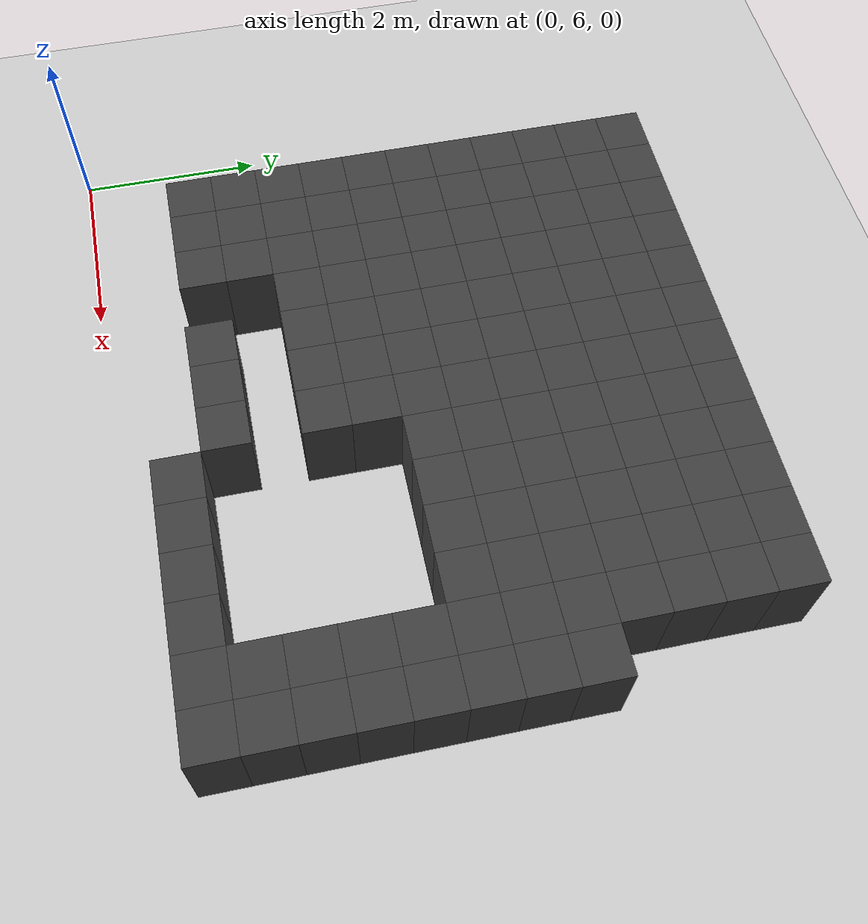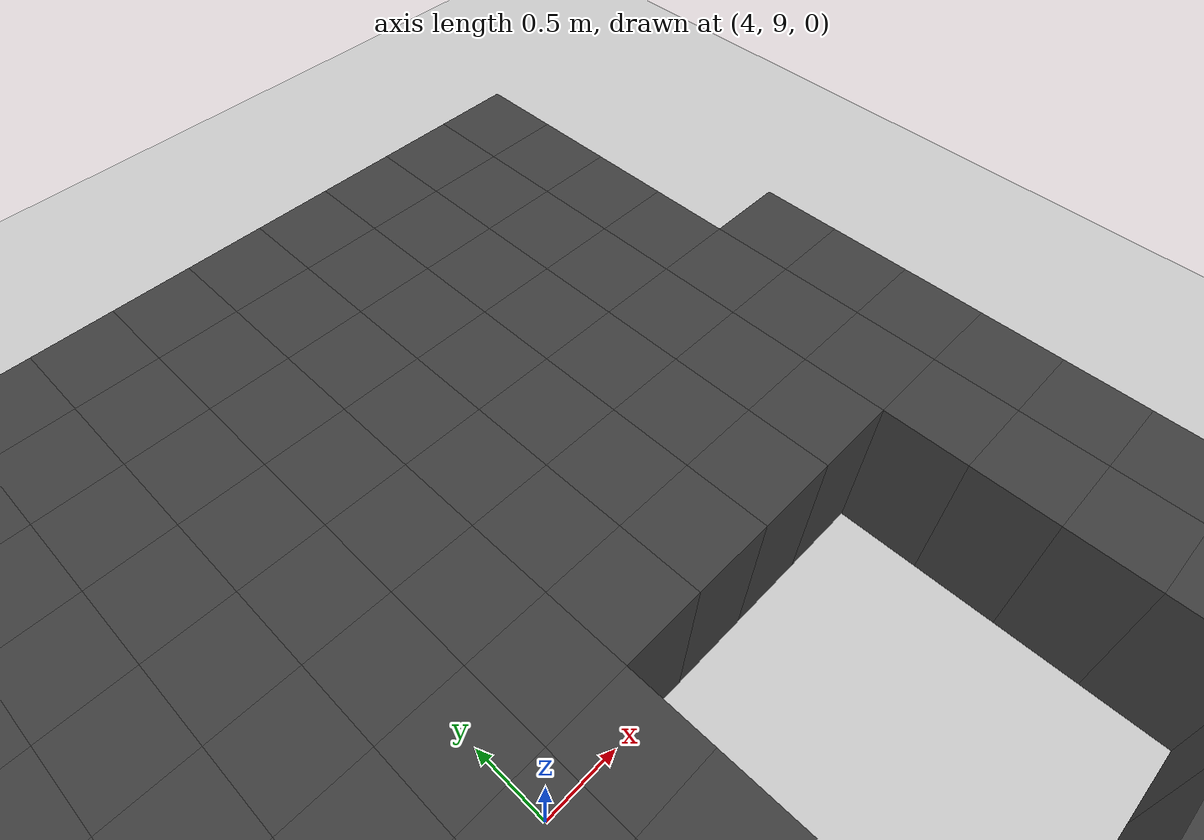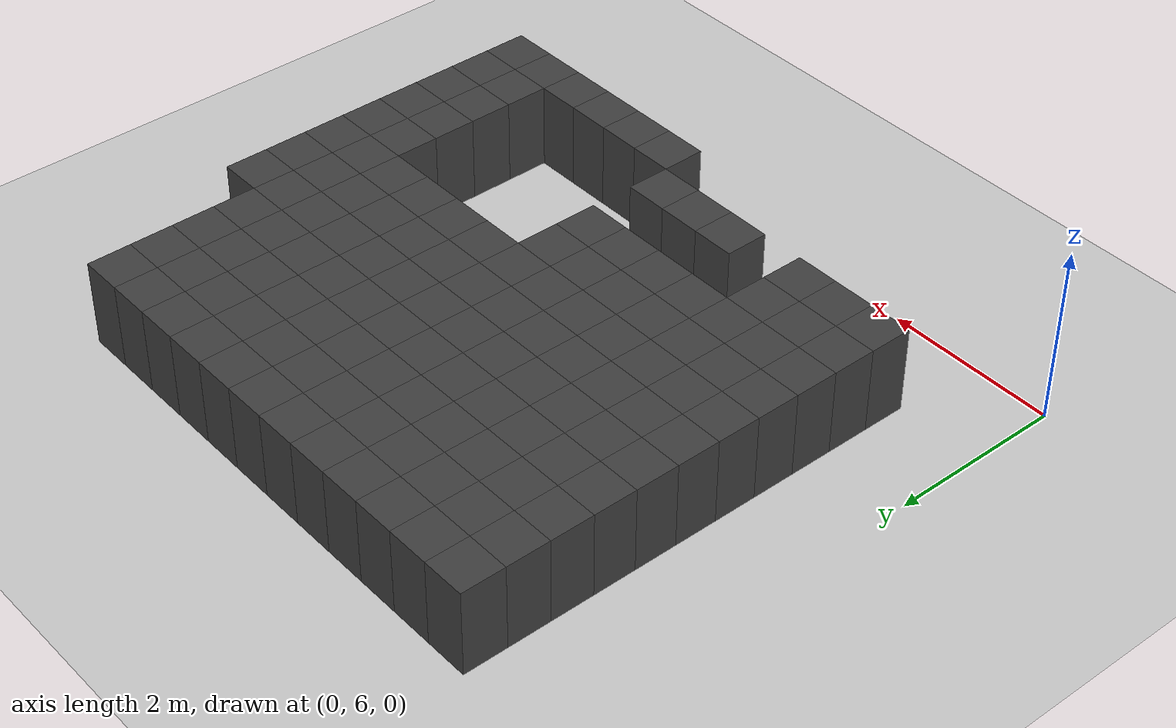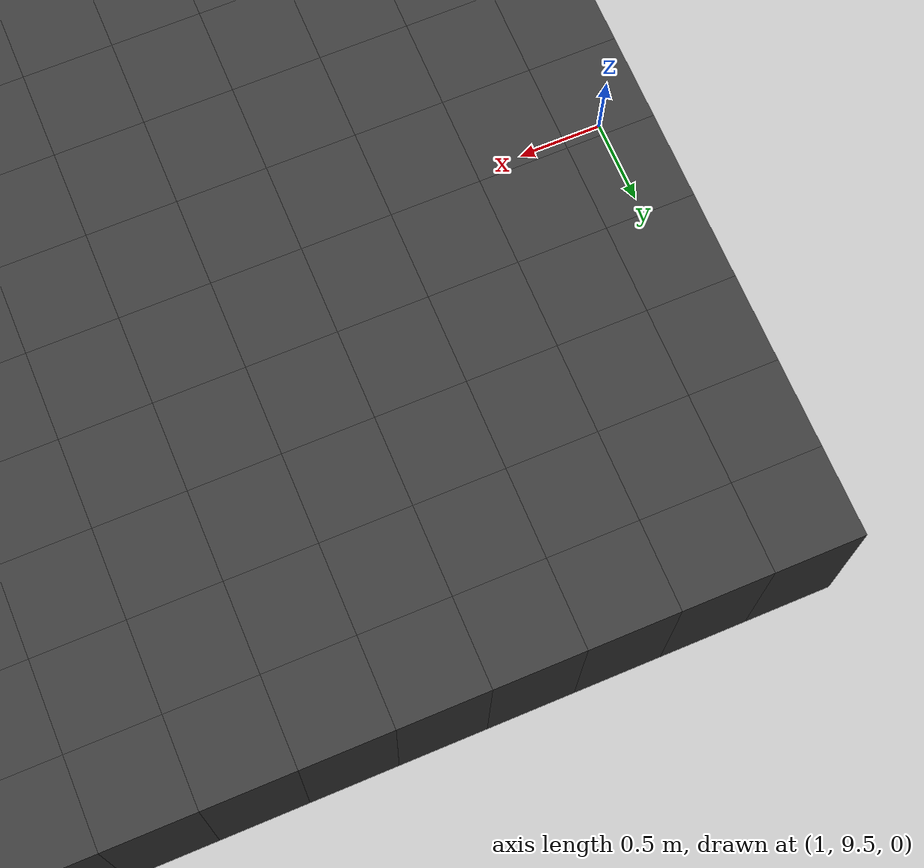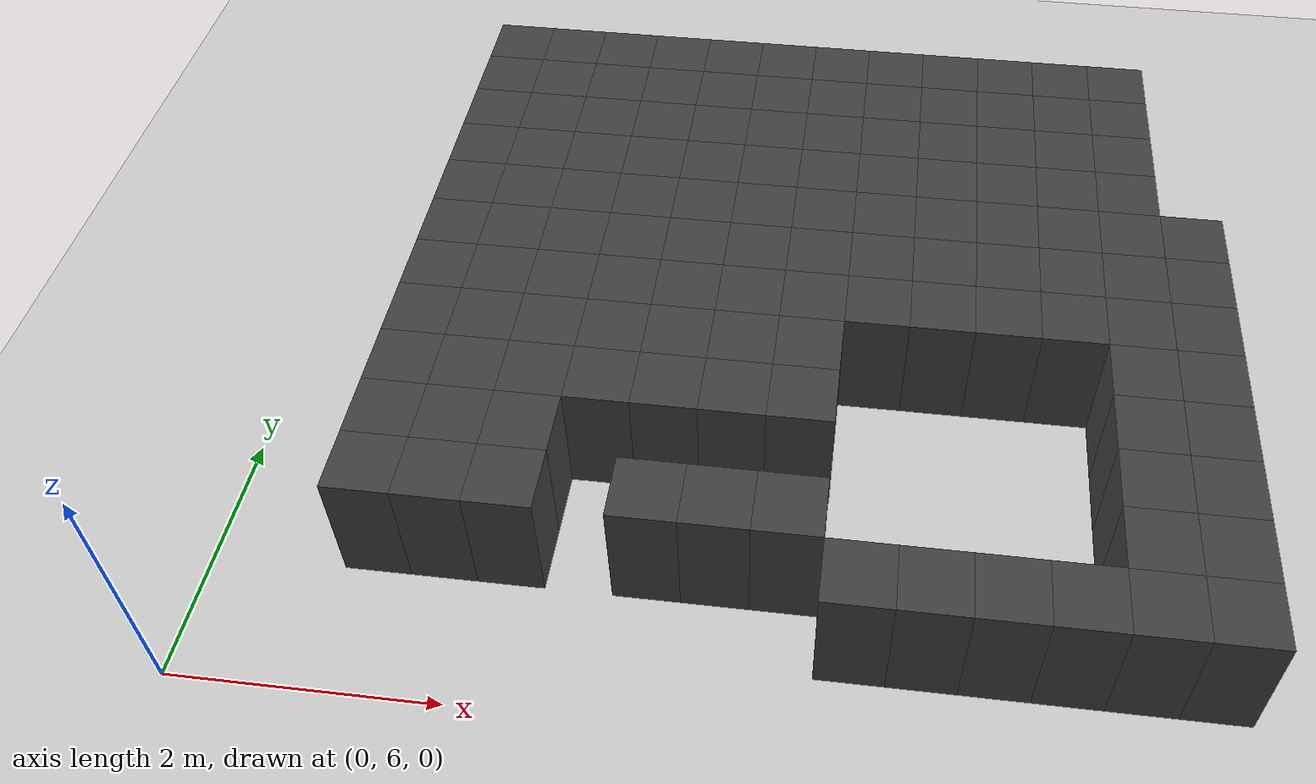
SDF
<sdf version="1.7">
 <world name="map_12818">
  <model name="ground_plane">
   <static>true</static>
   <link name="link">
    <collision name="collision">
     <geometry><plane><normal>0 0 1</normal><size>200 200</size></plane></geometry>
    </collision>
    <visual name="visual">
     <geometry><plane><normal>0 0 1</normal><size>200 200</size></plane></geometry>
     <material><ambient>0.8 0.8 0.8 1</ambient><diffuse>0.8 0.8 0.8 1</diffuse></material>
    </visual>
   </link>
  </model>
  <model name="maze_environment">
   <static>true</static>
   <link name="wall_27">
    <pose>1.250 12.250 0.500 0 0 0</pose>
    <collision name="col"><geometry><box><size>0.5 0.5 1.0</size></box></geometry></collision>
    <visual name="vis">
     <geometry><box><size>0.5 0.5 1.0</size></box></geometry>
     <material><ambient>0.15 0.15 0.15 1</ambient><diffuse>0.25 0.25 0.25 1</diffuse></material>
    </visual>
   </link>
   <link name="wall_28">
    <pose>1.750 12.250 0.500 0 0 0</pose>
    <collision name="col"><geometry><box><size>0.5 0.5 1.0</size></box></geometry></collision>
    <visual name="vis">
     <geometry><box><size>0.5 0.5 1.0</size></box></geometry>
     <material><ambient>0.15 0.15 0.15 1</ambient><diffuse>0.25 0.25 0.25 1</diffuse></material>
    </visual>
   </link>
   <link name="wall_29">
    <pose>2.250 12.250 0.500 0 0 0</pose>
    <collision name="col"><geometry><box><size>0.5 0.5 1.0</size></box></geometry></collision>
    <visual name="vis">
     <geometry><box><size>0.5 0.5 1.0</size></box></geometry>
     <material><ambient>0.15 0.15 0.15 1</ambient><diffuse>0.25 0.25 0.25 1</diffuse></material>
    </visual>
   </link>
   <link name="wall_30">
    <pose>2.750 12.250 0.500 0 0 0</pose>
    <collision name="col"><geometry><box><size>0.5 0.5 1.0</size></box></geometry></collision>
    <visual name="vis">
     <geometry><box><size>0.5 0.5 1.0</size></box></geometry>
     <material><ambient>0.15 0.15 0.15 1</ambient><diffuse>0.25 0.25 0.25 1</diffuse></material>
    </visual>
   </link>
   <link name="wall_31">
    <pose>3.250 12.250 0.500 0 0 0</pose>
    <collision name="col"><geometry><box><size>0.5 0.5 1.0</size></box></geometry></collision>
    <visual name="vis">
     <geometry><box><size>0.5 0.5 1.0</size></box></geometry>
     <material><ambient>0.15 0.15 0.15 1</ambient><diffuse>0.25 0.25 0.25 1</diffuse></material>
    </visual>
   </link>
   <link name="wall_32">
    <pose>3.750 12.250 0.500 0 0 0</pose>
    <collision name="col"><geometry><box><size>0.5 0.5 1.0</size></box></geometry></collision>
    <visual name="vis">
     <geometry><box><size>0.5 0.5 1.0</size></box></geometry>
     <material><ambient>0.15 0.15 0.15 1</ambient><diffuse>0.25 0.25 0.25 1</diffuse></material>
    </visual>
   </link>
   <link name="wall_33">
    <pose>4.250 12.250 0.500 0 0 0</pose>
    <collision name="col"><geometry><box><size>0.5 0.5 1.0</size></box></geometry></collision>
    <visual name="vis">
     <geometry><box><size>0.5 0.5 1.0</size></box></geometry>
     <material><ambient>0.15 0.15 0.15 1</ambient><diffuse>0.25 0.25 0.25 1</diffuse></material>
    </visual>
   </link>
   <link name="wall_34">
    <pose>4.750 12.250 0.500 0 0 0</pose>
    <collision name="col"><geometry><box><size>0.5 0.5 1.0</size></box></geometry></collision>
    <visual name="vis">
     <geometry><box><size>0.5 0.5 1.0</size></box></geometry>
     <material><ambient>0.15 0.15 0.15 1</ambient><diffuse>0.25 0.25 0.25 1</diffuse></material>
    </visual>
   </link>
   <link name="wall_35">
    <pose>5.250 12.250 0.500 0 0 0</pose>
    <collision name="col"><geometry><box><size>0.5 0.5 1.0</size></box></geometry></collision>
    <visual name="vis">
     <geometry><box><size>0.5 0.5 1.0</size></box></geometry>
     <material><ambient>0.15 0.15 0.15 1</ambient><diffuse>0.25 0.25 0.25 1</diffuse></material>
    </visual>
   </link>
   <link name="wall_36">
    <pose>5.750 12.250 0.500 0 0 0</pose>
    <collision name="col"><geometry><box><size>0.5 0.5 1.0</size></box></geometry></collision>
    <visual name="vis">
     <geometry><box><size>0.5 0.5 1.0</size></box></geometry>
     <material><ambient>0.15 0.15 0.15 1</ambient><diffuse>0.25 0.25 0.25 1</diffuse></material>
    </visual>
   </link>
   <link name="wall_37">
    <pose>6.250 12.250 0.500 0 0 0</pose>
    <collision name="col"><geometry><box><size>0.5 0.5 1.0</size></box></geometry></collision>
    <visual name="vis">
     <geometry><box><size>0.5 0.5 1.0</size></box></geometry>
     <material><ambient>0.15 0.15 0.15 1</ambient><diffuse>0.25 0.25 0.25 1</diffuse></material>
    </visual>
   </link>
   <link name="wall_38">
    <pose>6.750 12.250 0.500 0 0 0</pose>
    <collision name="col"><geometry><box><size>0.5 0.5 1.0</size></box></geometry></collision>
    <visual name="vis">
     <geometry><box><size>0.5 0.5 1.0</size></box></geometry>
     <material><ambient>0.15 0.15 0.15 1</ambient><diffuse>0.25 0.25 0.25 1</diffuse></material>
    </visual>
   </link>
   <link name="wall_74">
    <pose>1.250 11.750 0.500 0 0 0</pose>
    <collision name="col"><geometry><box><size>0.5 0.5 1.0</size></box></geometry></collision>
    <visual name="vis">
     <geometry><box><size>0.5 0.5 1.0</size></box></geometry>
     <material><ambient>0.15 0.15 0.15 1</ambient><diffuse>0.25 0.25 0.25 1</diffuse></material>
    </visual>
   </link>
   <link name="wall_75">
    <pose>1.750 11.750 0.500 0 0 0</pose>
    <collision name="col"><geometry><box><size>0.5 0.5 1.0</size></box></geometry></collision>
    <visual name="vis">
     <geometry><box><size>0.5 0.5 1.0</size></box></geometry>
     <material><ambient>0.15 0.15 0.15 1</ambient><diffuse>0.25 0.25 0.25 1</diffuse></material>
    </visual>
   </link>
   <link name="wall_76">
    <pose>2.250 11.750 0.500 0 0 0</pose>
    <collision name="col"><geometry><box><size>0.5 0.5 1.0</size></box></geometry></collision>
    <visual name="vis">
     <geometry><box><size>0.5 0.5 1.0</size></box></geometry>
     <material><ambient>0.15 0.15 0.15 1</ambient><diffuse>0.25 0.25 0.25 1</diffuse></material>
    </visual>
   </link>
   <link name="wall_77">
    <pose>2.750 11.750 0.500 0 0 0</pose>
    <collision name="col"><geometry><box><size>0.5 0.5 1.0</size></box></geometry></collision>
    <visual name="vis">
     <geometry><box><size>0.5 0.5 1.0</size></box></geometry>
     <material><ambient>0.15 0.15 0.15 1</ambient><diffuse>0.25 0.25 0.25 1</diffuse></material>
    </visual>
   </link>
   <link name="wall_78">
    <pose>3.250 11.750 0.500 0 0 0</pose>
    <collision name="col"><geometry><box><size>0.5 0.5 1.0</size></box></geometry></collision>
    <visual name="vis">
     <geometry><box><size>0.5 0.5 1.0</size></box></geometry>
     <material><ambient>0.15 0.15 0.15 1</ambient><diffuse>0.25 0.25 0.25 1</diffuse></material>
    </visual>
   </link>
   <link name="wall_79">
    <pose>3.750 11.750 0.500 0 0 0</pose>
    <collision name="col"><geometry><box><size>0.5 0.5 1.0</size></box></geometry></collision>
    <visual name="vis">
     <geometry><box><size>0.5 0.5 1.0</size></box></geometry>
     <material><ambient>0.15 0.15 0.15 1</ambient><diffuse>0.25 0.25 0.25 1</diffuse></material>
    </visual>
   </link>
   <link name="wall_80">
    <pose>4.250 11.750 0.500 0 0 0</pose>
    <collision name="col"><geometry><box><size>0.5 0.5 1.0</size></box></geometry></collision>
    <visual name="vis">
     <geometry><box><size>0.5 0.5 1.0</size></box></geometry>
     <material><ambient>0.15 0.15 0.15 1</ambient><diffuse>0.25 0.25 0.25 1</diffuse></material>
    </visual>
   </link>
   <link name="wall_81">
    <pose>4.750 11.750 0.500 0 0 0</pose>
    <collision name="col"><geometry><box><size>0.5 0.5 1.0</size></box></geometry></collision>
    <visual name="vis">
     <geometry><box><size>0.5 0.5 1.0</size></box></geometry>
     <material><ambient>0.15 0.15 0.15 1</ambient><diffuse>0.25 0.25 0.25 1</diffuse></material>
    </visual>
   </link>
   <link name="wall_82">
    <pose>5.250 11.750 0.500 0 0 0</pose>
    <collision name="col"><geometry><box><size>0.5 0.5 1.0</size></box></geometry></collision>
    <visual name="vis">
     <geometry><box><size>0.5 0.5 1.0</size></box></geometry>
     <material><ambient>0.15 0.15 0.15 1</ambient><diffuse>0.25 0.25 0.25 1</diffuse></material>
    </visual>
   </link>
   <link name="wall_83">
    <pose>5.750 11.750 0.500 0 0 0</pose>
    <collision name="col"><geometry><box><size>0.5 0.5 1.0</size></box></geometry></collision>
    <visual name="vis">
     <geometry><box><size>0.5 0.5 1.0</size></box></geometry>
     <material><ambient>0.15 0.15 0.15 1</ambient><diffuse>0.25 0.25 0.25 1</diffuse></material>
    </visual>
   </link>
   <link name="wall_84">
    <pose>6.250 11.750 0.500 0 0 0</pose>
    <collision name="col"><geometry><box><size>0.5 0.5 1.0</size></box></geometry></collision>
    <visual name="vis">
     <geometry><box><size>0.5 0.5 1.0</size></box></geometry>
     <material><ambient>0.15 0.15 0.15 1</ambient><diffuse>0.25 0.25 0.25 1</diffuse></material>
    </visual>
   </link>
   <link name="wall_85">
    <pose>6.750 11.750 0.500 0 0 0</pose>
    <collision name="col"><geometry><box><size>0.5 0.5 1.0</size></box></geometry></collision>
    <visual name="vis">
     <geometry><box><size>0.5 0.5 1.0</size></box></geometry>
     <material><ambient>0.15 0.15 0.15 1</ambient><diffuse>0.25 0.25 0.25 1</diffuse></material>
    </visual>
   </link>
   <link name="wall_121">
    <pose>1.250 11.250 0.500 0 0 0</pose>
    <collision name="col"><geometry><box><size>0.5 0.5 1.0</size></box></geometry></collision>
    <visual name="vis">
     <geometry><box><size>0.5 0.5 1.0</size></box></geometry>
     <material><ambient>0.15 0.15 0.15 1</ambient><diffuse>0.25 0.25 0.25 1</diffuse></material>
    </visual>
   </link>
   <link name="wall_122">
    <pose>1.750 11.250 0.500 0 0 0</pose>
    <collision name="col"><geometry><box><size>0.5 0.5 1.0</size></box></geometry></collision>
    <visual name="vis">
     <geometry><box><size>0.5 0.5 1.0</size></box></geometry>
     <material><ambient>0.15 0.15 0.15 1</ambient><diffuse>0.25 0.25 0.25 1</diffuse></material>
    </visual>
   </link>
   <link name="wall_123">
    <pose>2.250 11.250 0.500 0 0 0</pose>
    <collision name="col"><geometry><box><size>0.5 0.5 1.0</size></box></geometry></collision>
    <visual name="vis">
     <geometry><box><size>0.5 0.5 1.0</size></box></geometry>
     <material><ambient>0.15 0.15 0.15 1</ambient><diffuse>0.25 0.25 0.25 1</diffuse></material>
    </visual>
   </link>
   <link name="wall_124">
    <pose>2.750 11.250 0.500 0 0 0</pose>
    <collision name="col"><geometry><box><size>0.5 0.5 1.0</size></box></geometry></collision>
    <visual name="vis">
     <geometry><box><size>0.5 0.5 1.0</size></box></geometry>
     <material><ambient>0.15 0.15 0.15 1</ambient><diffuse>0.25 0.25 0.25 1</diffuse></material>
    </visual>
   </link>
   <link name="wall_125">
    <pose>3.250 11.250 0.500 0 0 0</pose>
    <collision name="col"><geometry><box><size>0.5 0.5 1.0</size></box></geometry></collision>
    <visual name="vis">
     <geometry><box><size>0.5 0.5 1.0</size></box></geometry>
     <material><ambient>0.15 0.15 0.15 1</ambient><diffuse>0.25 0.25 0.25 1</diffuse></material>
    </visual>
   </link>
   <link name="wall_126">
    <pose>3.750 11.250 0.500 0 0 0</pose>
    <collision name="col"><geometry><box><size>0.5 0.5 1.0</size></box></geometry></collision>
    <visual name="vis">
     <geometry><box><size>0.5 0.5 1.0</size></box></geometry>
     <material><ambient>0.15 0.15 0.15 1</ambient><diffuse>0.25 0.25 0.25 1</diffuse></material>
    </visual>
   </link>
   <link name="wall_127">
    <pose>4.250 11.250 0.500 0 0 0</pose>
    <collision name="col"><geometry><box><size>0.5 0.5 1.0</size></box></geometry></collision>
    <visual name="vis">
     <geometry><box><size>0.5 0.5 1.0</size></box></geometry>
     <material><ambient>0.15 0.15 0.15 1</ambient><diffuse>0.25 0.25 0.25 1</diffuse></material>
    </visual>
   </link>
   <link name="wall_128">
    <pose>4.750 11.250 0.500 0 0 0</pose>
    <collision name="col"><geometry><box><size>0.5 0.5 1.0</size></box></geometry></collision>
    <visual name="vis">
     <geometry><box><size>0.5 0.5 1.0</size></box></geometry>
     <material><ambient>0.15 0.15 0.15 1</ambient><diffuse>0.25 0.25 0.25 1</diffuse></material>
    </visual>
   </link>
   <link name="wall_129">
    <pose>5.250 11.250 0.500 0 0 0</pose>
    <collision name="col"><geometry><box><size>0.5 0.5 1.0</size></box></geometry></collision>
    <visual name="vis">
     <geometry><box><size>0.5 0.5 1.0</size></box></geometry>
     <material><ambient>0.15 0.15 0.15 1</ambient><diffuse>0.25 0.25 0.25 1</diffuse></material>
    </visual>
   </link>
   <link name="wall_130">
    <pose>5.750 11.250 0.500 0 0 0</pose>
    <collision name="col"><geometry><box><size>0.5 0.5 1.0</size></box></geometry></collision>
    <visual name="vis">
     <geometry><box><size>0.5 0.5 1.0</size></box></geometry>
     <material><ambient>0.15 0.15 0.15 1</ambient><diffuse>0.25 0.25 0.25 1</diffuse></material>
    </visual>
   </link>
   <link name="wall_131">
    <pose>6.250 11.250 0.500 0 0 0</pose>
    <collision name="col"><geometry><box><size>0.5 0.5 1.0</size></box></geometry></collision>
    <visual name="vis">
     <geometry><box><size>0.5 0.5 1.0</size></box></geometry>
     <material><ambient>0.15 0.15 0.15 1</ambient><diffuse>0.25 0.25 0.25 1</diffuse></material>
    </visual>
   </link>
   <link name="wall_132">
    <pose>6.750 11.250 0.500 0 0 0</pose>
    <collision name="col"><geometry><box><size>0.5 0.5 1.0</size></box></geometry></collision>
    <visual name="vis">
     <geometry><box><size>0.5 0.5 1.0</size></box></geometry>
     <material><ambient>0.15 0.15 0.15 1</ambient><diffuse>0.25 0.25 0.25 1</diffuse></material>
    </visual>
   </link>
   <link name="wall_168">
    <pose>1.250 10.750 0.500 0 0 0</pose>
    <collision name="col"><geometry><box><size>0.5 0.5 1.0</size></box></geometry></collision>
    <visual name="vis">
     <geometry><box><size>0.5 0.5 1.0</size></box></geometry>
     <material><ambient>0.15 0.15 0.15 1</ambient><diffuse>0.25 0.25 0.25 1</diffuse></material>
    </visual>
   </link>
   <link name="wall_169">
    <pose>1.750 10.750 0.500 0 0 0</pose>
    <collision name="col"><geometry><box><size>0.5 0.5 1.0</size></box></geometry></collision>
    <visual name="vis">
     <geometry><box><size>0.5 0.5 1.0</size></box></geometry>
     <material><ambient>0.15 0.15 0.15 1</ambient><diffuse>0.25 0.25 0.25 1</diffuse></material>
    </visual>
   </link>
   <link name="wall_170">
    <pose>2.250 10.750 0.500 0 0 0</pose>
    <collision name="col"><geometry><box><size>0.5 0.5 1.0</size></box></geometry></collision>
    <visual name="vis">
     <geometry><box><size>0.5 0.5 1.0</size></box></geometry>
     <material><ambient>0.15 0.15 0.15 1</ambient><diffuse>0.25 0.25 0.25 1</diffuse></material>
    </visual>
   </link>
   <link name="wall_171">
    <pose>2.750 10.750 0.500 0 0 0</pose>
    <collision name="col"><geometry><box><size>0.5 0.5 1.0</size></box></geometry></collision>
    <visual name="vis">
     <geometry><box><size>0.5 0.5 1.0</size></box></geometry>
     <material><ambient>0.15 0.15 0.15 1</ambient><diffuse>0.25 0.25 0.25 1</diffuse></material>
    </visual>
   </link>
   <link name="wall_172">
    <pose>3.250 10.750 0.500 0 0 0</pose>
    <collision name="col"><geometry><box><size>0.5 0.5 1.0</size></box></geometry></collision>
    <visual name="vis">
     <geometry><box><size>0.5 0.5 1.0</size></box></geometry>
     <material><ambient>0.15 0.15 0.15 1</ambient><diffuse>0.25 0.25 0.25 1</diffuse></material>
    </visual>
   </link>
   <link name="wall_173">
    <pose>3.750 10.750 0.500 0 0 0</pose>
    <collision name="col"><geometry><box><size>0.5 0.5 1.0</size></box></geometry></collision>
    <visual name="vis">
     <geometry><box><size>0.5 0.5 1.0</size></box></geometry>
     <material><ambient>0.15 0.15 0.15 1</ambient><diffuse>0.25 0.25 0.25 1</diffuse></material>
    </visual>
   </link>
   <link name="wall_174">
    <pose>4.250 10.750 0.500 0 0 0</pose>
    <collision name="col"><geometry><box><size>0.5 0.5 1.0</size></box></geometry></collision>
    <visual name="vis">
     <geometry><box><size>0.5 0.5 1.0</size></box></geometry>
     <material><ambient>0.15 0.15 0.15 1</ambient><diffuse>0.25 0.25 0.25 1</diffuse></material>
    </visual>
   </link>
   <link name="wall_175">
    <pose>4.750 10.750 0.500 0 0 0</pose>
    <collision name="col"><geometry><box><size>0.5 0.5 1.0</size></box></geometry></collision>
    <visual name="vis">
     <geometry><box><size>0.5 0.5 1.0</size></box></geometry>
     <material><ambient>0.15 0.15 0.15 1</ambient><diffuse>0.25 0.25 0.25 1</diffuse></material>
    </visual>
   </link>
   <link name="wall_176">
    <pose>5.250 10.750 0.500 0 0 0</pose>
    <collision name="col"><geometry><box><size>0.5 0.5 1.0</size></box></geometry></collision>
    <visual name="vis">
     <geometry><box><size>0.5 0.5 1.0</size></box></geometry>
     <material><ambient>0.15 0.15 0.15 1</ambient><diffuse>0.25 0.25 0.25 1</diffuse></material>
    </visual>
   </link>
   <link name="wall_177">
    <pose>5.750 10.750 0.500 0 0 0</pose>
    <collision name="col"><geometry><box><size>0.5 0.5 1.0</size></box></geometry></collision>
    <visual name="vis">
     <geometry><box><size>0.5 0.5 1.0</size></box></geometry>
     <material><ambient>0.15 0.15 0.15 1</ambient><diffuse>0.25 0.25 0.25 1</diffuse></material>
    </visual>
   </link>
   <link name="wall_178">
    <pose>6.250 10.750 0.500 0 0 0</pose>
    <collision name="col"><geometry><box><size>0.5 0.5 1.0</size></box></geometry></collision>
    <visual name="vis">
     <geometry><box><size>0.5 0.5 1.0</size></box></geometry>
     <material><ambient>0.15 0.15 0.15 1</ambient><diffuse>0.25 0.25 0.25 1</diffuse></material>
    </visual>
   </link>
   <link name="wall_179">
    <pose>6.750 10.750 0.500 0 0 0</pose>
    <collision name="col"><geometry><box><size>0.5 0.5 1.0</size></box></geometry></collision>
    <visual name="vis">
     <geometry><box><size>0.5 0.5 1.0</size></box></geometry>
     <material><ambient>0.15 0.15 0.15 1</ambient><diffuse>0.25 0.25 0.25 1</diffuse></material>
    </visual>
   </link>
   <link name="wall_217">
    <pose>1.250 10.250 0.500 0 0 0</pose>
    <collision name="col"><geometry><box><size>0.5 0.5 1.0</size></box></geometry></collision>
    <visual name="vis">
     <geometry><box><size>0.5 0.5 1.0</size></box></geometry>
     <material><ambient>0.15 0.15 0.15 1</ambient><diffuse>0.25 0.25 0.25 1</diffuse></material>
    </visual>
   </link>
   <link name="wall_218">
    <pose>1.750 10.250 0.500 0 0 0</pose>
    <collision name="col"><geometry><box><size>0.5 0.5 1.0</size></box></geometry></collision>
    <visual name="vis">
     <geometry><box><size>0.5 0.5 1.0</size></box></geometry>
     <material><ambient>0.15 0.15 0.15 1</ambient><diffuse>0.25 0.25 0.25 1</diffuse></material>
    </visual>
   </link>
   <link name="wall_219">
    <pose>2.250 10.250 0.500 0 0 0</pose>
    <collision name="col"><geometry><box><size>0.5 0.5 1.0</size></box></geometry></collision>
    <visual name="vis">
     <geometry><box><size>0.5 0.5 1.0</size></box></geometry>
     <material><ambient>0.15 0.15 0.15 1</ambient><diffuse>0.25 0.25 0.25 1</diffuse></material>
    </visual>
   </link>
   <link name="wall_220">
    <pose>2.750 10.250 0.500 0 0 0</pose>
    <collision name="col"><geometry><box><size>0.5 0.5 1.0</size></box></geometry></collision>
    <visual name="vis">
     <geometry><box><size>0.5 0.5 1.0</size></box></geometry>
     <material><ambient>0.15 0.15 0.15 1</ambient><diffuse>0.25 0.25 0.25 1</diffuse></material>
    </visual>
   </link>
   <link name="wall_221">
    <pose>3.250 10.250 0.500 0 0 0</pose>
    <collision name="col"><geometry><box><size>0.5 0.5 1.0</size></box></geometry></collision>
    <visual name="vis">
     <geometry><box><size>0.5 0.5 1.0</size></box></geometry>
     <material><ambient>0.15 0.15 0.15 1</ambient><diffuse>0.25 0.25 0.25 1</diffuse></material>
    </visual>
   </link>
   <link name="wall_222">
    <pose>3.750 10.250 0.500 0 0 0</pose>
    <collision name="col"><geometry><box><size>0.5 0.5 1.0</size></box></geometry></collision>
    <visual name="vis">
     <geometry><box><size>0.5 0.5 1.0</size></box></geometry>
     <material><ambient>0.15 0.15 0.15 1</ambient><diffuse>0.25 0.25 0.25 1</diffuse></material>
    </visual>
   </link>
   <link name="wall_223">
    <pose>4.250 10.250 0.500 0 0 0</pose>
    <collision name="col"><geometry><box><size>0.5 0.5 1.0</size></box></geometry></collision>
    <visual name="vis">
     <geometry><box><size>0.5 0.5 1.0</size></box></geometry>
     <material><ambient>0.15 0.15 0.15 1</ambient><diffuse>0.25 0.25 0.25 1</diffuse></material>
    </visual>
   </link>
   <link name="wall_224">
    <pose>4.750 10.250 0.500 0 0 0</pose>
    <collision name="col"><geometry><box><size>0.5 0.5 1.0</size></box></geometry></collision>
    <visual name="vis">
     <geometry><box><size>0.5 0.5 1.0</size></box></geometry>
     <material><ambient>0.15 0.15 0.15 1</ambient><diffuse>0.25 0.25 0.25 1</diffuse></material>
    </visual>
   </link>
   <link name="wall_225">
    <pose>5.250 10.250 0.500 0 0 0</pose>
    <collision name="col"><geometry><box><size>0.5 0.5 1.0</size></box></geometry></collision>
    <visual name="vis">
     <geometry><box><size>0.5 0.5 1.0</size></box></geometry>
     <material><ambient>0.15 0.15 0.15 1</ambient><diffuse>0.25 0.25 0.25 1</diffuse></material>
    </visual>
   </link>
   <link name="wall_226">
    <pose>5.750 10.250 0.500 0 0 0</pose>
    <collision name="col"><geometry><box><size>0.5 0.5 1.0</size></box></geometry></collision>
    <visual name="vis">
     <geometry><box><size>0.5 0.5 1.0</size></box></geometry>
     <material><ambient>0.15 0.15 0.15 1</ambient><diffuse>0.25 0.25 0.25 1</diffuse></material>
    </visual>
   </link>
   <link name="wall_227">
    <pose>6.250 10.250 0.500 0 0 0</pose>
    <collision name="col"><geometry><box><size>0.5 0.5 1.0</size></box></geometry></collision>
    <visual name="vis">
     <geometry><box><size>0.5 0.5 1.0</size></box></geometry>
     <material><ambient>0.15 0.15 0.15 1</ambient><diffuse>0.25 0.25 0.25 1</diffuse></material>
    </visual>
   </link>
   <link name="wall_228">
    <pose>6.750 10.250 0.500 0 0 0</pose>
    <collision name="col"><geometry><box><size>0.5 0.5 1.0</size></box></geometry></collision>
    <visual name="vis">
     <geometry><box><size>0.5 0.5 1.0</size></box></geometry>
     <material><ambient>0.15 0.15 0.15 1</ambient><diffuse>0.25 0.25 0.25 1</diffuse></material>
    </visual>
   </link>
   <link name="wall_229">
    <pose>7.250 10.250 0.500 0 0 0</pose>
    <collision name="col"><geometry><box><size>0.5 0.5 1.0</size></box></geometry></collision>
    <visual name="vis">
     <geometry><box><size>0.5 0.5 1.0</size></box></geometry>
     <material><ambient>0.15 0.15 0.15 1</ambient><diffuse>0.25 0.25 0.25 1</diffuse></material>
    </visual>
   </link>
   <link name="wall_266">
    <pose>1.250 9.750 0.500 0 0 0</pose>
    <collision name="col"><geometry><box><size>0.5 0.5 1.0</size></box></geometry></collision>
    <visual name="vis">
     <geometry><box><size>0.5 0.5 1.0</size></box></geometry>
     <material><ambient>0.15 0.15 0.15 1</ambient><diffuse>0.25 0.25 0.25 1</diffuse></material>
    </visual>
   </link>
   <link name="wall_267">
    <pose>1.750 9.750 0.500 0 0 0</pose>
    <collision name="col"><geometry><box><size>0.5 0.5 1.0</size></box></geometry></collision>
    <visual name="vis">
     <geometry><box><size>0.5 0.5 1.0</size></box></geometry>
     <material><ambient>0.15 0.15 0.15 1</ambient><diffuse>0.25 0.25 0.25 1</diffuse></material>
    </visual>
   </link>
   <link name="wall_268">
    <pose>2.250 9.750 0.500 0 0 0</pose>
    <collision name="col"><geometry><box><size>0.5 0.5 1.0</size></box></geometry></collision>
    <visual name="vis">
     <geometry><box><size>0.5 0.5 1.0</size></box></geometry>
     <material><ambient>0.15 0.15 0.15 1</ambient><diffuse>0.25 0.25 0.25 1</diffuse></material>
    </visual>
   </link>
   <link name="wall_269">
    <pose>2.750 9.750 0.500 0 0 0</pose>
    <collision name="col"><geometry><box><size>0.5 0.5 1.0</size></box></geometry></collision>
    <visual name="vis">
     <geometry><box><size>0.5 0.5 1.0</size></box></geometry>
     <material><ambient>0.15 0.15 0.15 1</ambient><diffuse>0.25 0.25 0.25 1</diffuse></material>
    </visual>
   </link>
   <link name="wall_270">
    <pose>3.250 9.750 0.500 0 0 0</pose>
    <collision name="col"><geometry><box><size>0.5 0.5 1.0</size></box></geometry></collision>
    <visual name="vis">
     <geometry><box><size>0.5 0.5 1.0</size></box></geometry>
     <material><ambient>0.15 0.15 0.15 1</ambient><diffuse>0.25 0.25 0.25 1</diffuse></material>
    </visual>
   </link>
   <link name="wall_271">
    <pose>3.750 9.750 0.500 0 0 0</pose>
    <collision name="col"><geometry><box><size>0.5 0.5 1.0</size></box></geometry></collision>
    <visual name="vis">
     <geometry><box><size>0.5 0.5 1.0</size></box></geometry>
     <material><ambient>0.15 0.15 0.15 1</ambient><diffuse>0.25 0.25 0.25 1</diffuse></material>
    </visual>
   </link>
   <link name="wall_272">
    <pose>4.250 9.750 0.500 0 0 0</pose>
    <collision name="col"><geometry><box><size>0.5 0.5 1.0</size></box></geometry></collision>
    <visual name="vis">
     <geometry><box><size>0.5 0.5 1.0</size></box></geometry>
     <material><ambient>0.15 0.15 0.15 1</ambient><diffuse>0.25 0.25 0.25 1</diffuse></material>
    </visual>
   </link>
   <link name="wall_273">
    <pose>4.750 9.750 0.500 0 0 0</pose>
    <collision name="col"><geometry><box><size>0.5 0.5 1.0</size></box></geometry></collision>
    <visual name="vis">
     <geometry><box><size>0.5 0.5 1.0</size></box></geometry>
     <material><ambient>0.15 0.15 0.15 1</ambient><diffuse>0.25 0.25 0.25 1</diffuse></material>
    </visual>
   </link>
   <link name="wall_274">
    <pose>5.250 9.750 0.500 0 0 0</pose>
    <collision name="col"><geometry><box><size>0.5 0.5 1.0</size></box></geometry></collision>
    <visual name="vis">
     <geometry><box><size>0.5 0.5 1.0</size></box></geometry>
     <material><ambient>0.15 0.15 0.15 1</ambient><diffuse>0.25 0.25 0.25 1</diffuse></material>
    </visual>
   </link>
   <link name="wall_275">
    <pose>5.750 9.750 0.500 0 0 0</pose>
    <collision name="col"><geometry><box><size>0.5 0.5 1.0</size></box></geometry></collision>
    <visual name="vis">
     <geometry><box><size>0.5 0.5 1.0</size></box></geometry>
     <material><ambient>0.15 0.15 0.15 1</ambient><diffuse>0.25 0.25 0.25 1</diffuse></material>
    </visual>
   </link>
   <link name="wall_276">
    <pose>6.250 9.750 0.500 0 0 0</pose>
    <collision name="col"><geometry><box><size>0.5 0.5 1.0</size></box></geometry></collision>
    <visual name="vis">
     <geometry><box><size>0.5 0.5 1.0</size></box></geometry>
     <material><ambient>0.15 0.15 0.15 1</ambient><diffuse>0.25 0.25 0.25 1</diffuse></material>
    </visual>
   </link>
   <link name="wall_277">
    <pose>6.750 9.750 0.500 0 0 0</pose>
    <collision name="col"><geometry><box><size>0.5 0.5 1.0</size></box></geometry></collision>
    <visual name="vis">
     <geometry><box><size>0.5 0.5 1.0</size></box></geometry>
     <material><ambient>0.15 0.15 0.15 1</ambient><diffuse>0.25 0.25 0.25 1</diffuse></material>
    </visual>
   </link>
   <link name="wall_278">
    <pose>7.250 9.750 0.500 0 0 0</pose>
    <collision name="col"><geometry><box><size>0.5 0.5 1.0</size></box></geometry></collision>
    <visual name="vis">
     <geometry><box><size>0.5 0.5 1.0</size></box></geometry>
     <material><ambient>0.15 0.15 0.15 1</ambient><diffuse>0.25 0.25 0.25 1</diffuse></material>
    </visual>
   </link>
   <link name="wall_315">
    <pose>1.250 9.250 0.500 0 0 0</pose>
    <collision name="col"><geometry><box><size>0.5 0.5 1.0</size></box></geometry></collision>
    <visual name="vis">
     <geometry><box><size>0.5 0.5 1.0</size></box></geometry>
     <material><ambient>0.15 0.15 0.15 1</ambient><diffuse>0.25 0.25 0.25 1</diffuse></material>
    </visual>
   </link>
   <link name="wall_316">
    <pose>1.750 9.250 0.500 0 0 0</pose>
    <collision name="col"><geometry><box><size>0.5 0.5 1.0</size></box></geometry></collision>
    <visual name="vis">
     <geometry><box><size>0.5 0.5 1.0</size></box></geometry>
     <material><ambient>0.15 0.15 0.15 1</ambient><diffuse>0.25 0.25 0.25 1</diffuse></material>
    </visual>
   </link>
   <link name="wall_317">
    <pose>2.250 9.250 0.500 0 0 0</pose>
    <collision name="col"><geometry><box><size>0.5 0.5 1.0</size></box></geometry></collision>
    <visual name="vis">
     <geometry><box><size>0.5 0.5 1.0</size></box></geometry>
     <material><ambient>0.15 0.15 0.15 1</ambient><diffuse>0.25 0.25 0.25 1</diffuse></material>
    </visual>
   </link>
   <link name="wall_318">
    <pose>2.750 9.250 0.500 0 0 0</pose>
    <collision name="col"><geometry><box><size>0.5 0.5 1.0</size></box></geometry></collision>
    <visual name="vis">
     <geometry><box><size>0.5 0.5 1.0</size></box></geometry>
     <material><ambient>0.15 0.15 0.15 1</ambient><diffuse>0.25 0.25 0.25 1</diffuse></material>
    </visual>
   </link>
   <link name="wall_319">
    <pose>3.250 9.250 0.500 0 0 0</pose>
    <collision name="col"><geometry><box><size>0.5 0.5 1.0</size></box></geometry></collision>
    <visual name="vis">
     <geometry><box><size>0.5 0.5 1.0</size></box></geometry>
     <material><ambient>0.15 0.15 0.15 1</ambient><diffuse>0.25 0.25 0.25 1</diffuse></material>
    </visual>
   </link>
   <link name="wall_320">
    <pose>3.750 9.250 0.500 0 0 0</pose>
    <collision name="col"><geometry><box><size>0.5 0.5 1.0</size></box></geometry></collision>
    <visual name="vis">
     <geometry><box><size>0.5 0.5 1.0</size></box></geometry>
     <material><ambient>0.15 0.15 0.15 1</ambient><diffuse>0.25 0.25 0.25 1</diffuse></material>
    </visual>
   </link>
   <link name="wall_321">
    <pose>4.250 9.250 0.500 0 0 0</pose>
    <collision name="col"><geometry><box><size>0.5 0.5 1.0</size></box></geometry></collision>
    <visual name="vis">
     <geometry><box><size>0.5 0.5 1.0</size></box></geometry>
     <material><ambient>0.15 0.15 0.15 1</ambient><diffuse>0.25 0.25 0.25 1</diffuse></material>
    </visual>
   </link>
   <link name="wall_322">
    <pose>4.750 9.250 0.500 0 0 0</pose>
    <collision name="col"><geometry><box><size>0.5 0.5 1.0</size></box></geometry></collision>
    <visual name="vis">
     <geometry><box><size>0.5 0.5 1.0</size></box></geometry>
     <material><ambient>0.15 0.15 0.15 1</ambient><diffuse>0.25 0.25 0.25 1</diffuse></material>
    </visual>
   </link>
   <link name="wall_323">
    <pose>5.250 9.250 0.500 0 0 0</pose>
    <collision name="col"><geometry><box><size>0.5 0.5 1.0</size></box></geometry></collision>
    <visual name="vis">
     <geometry><box><size>0.5 0.5 1.0</size></box></geometry>
     <material><ambient>0.15 0.15 0.15 1</ambient><diffuse>0.25 0.25 0.25 1</diffuse></material>
    </visual>
   </link>
   <link name="wall_324">
    <pose>5.750 9.250 0.500 0 0 0</pose>
    <collision name="col"><geometry><box><size>0.5 0.5 1.0</size></box></geometry></collision>
    <visual name="vis">
     <geometry><box><size>0.5 0.5 1.0</size></box></geometry>
     <material><ambient>0.15 0.15 0.15 1</ambient><diffuse>0.25 0.25 0.25 1</diffuse></material>
    </visual>
   </link>
   <link name="wall_325">
    <pose>6.250 9.250 0.500 0 0 0</pose>
    <collision name="col"><geometry><box><size>0.5 0.5 1.0</size></box></geometry></collision>
    <visual name="vis">
     <geometry><box><size>0.5 0.5 1.0</size></box></geometry>
     <material><ambient>0.15 0.15 0.15 1</ambient><diffuse>0.25 0.25 0.25 1</diffuse></material>
    </visual>
   </link>
   <link name="wall_326">
    <pose>6.750 9.250 0.500 0 0 0</pose>
    <collision name="col"><geometry><box><size>0.5 0.5 1.0</size></box></geometry></collision>
    <visual name="vis">
     <geometry><box><size>0.5 0.5 1.0</size></box></geometry>
     <material><ambient>0.15 0.15 0.15 1</ambient><diffuse>0.25 0.25 0.25 1</diffuse></material>
    </visual>
   </link>
   <link name="wall_327">
    <pose>7.250 9.250 0.500 0 0 0</pose>
    <collision name="col"><geometry><box><size>0.5 0.5 1.0</size></box></geometry></collision>
    <visual name="vis">
     <geometry><box><size>0.5 0.5 1.0</size></box></geometry>
     <material><ambient>0.15 0.15 0.15 1</ambient><diffuse>0.25 0.25 0.25 1</diffuse></material>
    </visual>
   </link>
   <link name="wall_364">
    <pose>1.250 8.750 0.500 0 0 0</pose>
    <collision name="col"><geometry><box><size>0.5 0.5 1.0</size></box></geometry></collision>
    <visual name="vis">
     <geometry><box><size>0.5 0.5 1.0</size></box></geometry>
     <material><ambient>0.15 0.15 0.15 1</ambient><diffuse>0.25 0.25 0.25 1</diffuse></material>
    </visual>
   </link>
   <link name="wall_365">
    <pose>1.750 8.750 0.500 0 0 0</pose>
    <collision name="col"><geometry><box><size>0.5 0.5 1.0</size></box></geometry></collision>
    <visual name="vis">
     <geometry><box><size>0.5 0.5 1.0</size></box></geometry>
     <material><ambient>0.15 0.15 0.15 1</ambient><diffuse>0.25 0.25 0.25 1</diffuse></material>
    </visual>
   </link>
   <link name="wall_366">
    <pose>2.250 8.750 0.500 0 0 0</pose>
    <collision name="col"><geometry><box><size>0.5 0.5 1.0</size></box></geometry></collision>
    <visual name="vis">
     <geometry><box><size>0.5 0.5 1.0</size></box></geometry>
     <material><ambient>0.15 0.15 0.15 1</ambient><diffuse>0.25 0.25 0.25 1</diffuse></material>
    </visual>
   </link>
   <link name="wall_367">
    <pose>2.750 8.750 0.500 0 0 0</pose>
    <collision name="col"><geometry><box><size>0.5 0.5 1.0</size></box></geometry></collision>
    <visual name="vis">
     <geometry><box><size>0.5 0.5 1.0</size></box></geometry>
     <material><ambient>0.15 0.15 0.15 1</ambient><diffuse>0.25 0.25 0.25 1</diffuse></material>
    </visual>
   </link>
   <link name="wall_368">
    <pose>3.250 8.750 0.500 0 0 0</pose>
    <collision name="col"><geometry><box><size>0.5 0.5 1.0</size></box></geometry></collision>
    <visual name="vis">
     <geometry><box><size>0.5 0.5 1.0</size></box></geometry>
     <material><ambient>0.15 0.15 0.15 1</ambient><diffuse>0.25 0.25 0.25 1</diffuse></material>
    </visual>
   </link>
   <link name="wall_369">
    <pose>3.750 8.750 0.500 0 0 0</pose>
    <collision name="col"><geometry><box><size>0.5 0.5 1.0</size></box></geometry></collision>
    <visual name="vis">
     <geometry><box><size>0.5 0.5 1.0</size></box></geometry>
     <material><ambient>0.15 0.15 0.15 1</ambient><diffuse>0.25 0.25 0.25 1</diffuse></material>
    </visual>
   </link>
   <link name="wall_370">
    <pose>4.250 8.750 0.500 0 0 0</pose>
    <collision name="col"><geometry><box><size>0.5 0.5 1.0</size></box></geometry></collision>
    <visual name="vis">
     <geometry><box><size>0.5 0.5 1.0</size></box></geometry>
     <material><ambient>0.15 0.15 0.15 1</ambient><diffuse>0.25 0.25 0.25 1</diffuse></material>
    </visual>
   </link>
   <link name="wall_371">
    <pose>6.750 8.750 0.500 0 0 0</pose>
    <collision name="col"><geometry><box><size>0.5 0.5 1.0</size></box></geometry></collision>
    <visual name="vis">
     <geometry><box><size>0.5 0.5 1.0</size></box></geometry>
     <material><ambient>0.15 0.15 0.15 1</ambient><diffuse>0.25 0.25 0.25 1</diffuse></material>
    </visual>
   </link>
   <link name="wall_372">
    <pose>7.250 8.750 0.500 0 0 0</pose>
    <collision name="col"><geometry><box><size>0.5 0.5 1.0</size></box></geometry></collision>
    <visual name="vis">
     <geometry><box><size>0.5 0.5 1.0</size></box></geometry>
     <material><ambient>0.15 0.15 0.15 1</ambient><diffuse>0.25 0.25 0.25 1</diffuse></material>
    </visual>
   </link>
   <link name="wall_409">
    <pose>1.250 8.250 0.500 0 0 0</pose>
    <collision name="col"><geometry><box><size>0.5 0.5 1.0</size></box></geometry></collision>
    <visual name="vis">
     <geometry><box><size>0.5 0.5 1.0</size></box></geometry>
     <material><ambient>0.15 0.15 0.15 1</ambient><diffuse>0.25 0.25 0.25 1</diffuse></material>
    </visual>
   </link>
   <link name="wall_410">
    <pose>1.750 8.250 0.500 0 0 0</pose>
    <collision name="col"><geometry><box><size>0.5 0.5 1.0</size></box></geometry></collision>
    <visual name="vis">
     <geometry><box><size>0.5 0.5 1.0</size></box></geometry>
     <material><ambient>0.15 0.15 0.15 1</ambient><diffuse>0.25 0.25 0.25 1</diffuse></material>
    </visual>
   </link>
   <link name="wall_411">
    <pose>2.250 8.250 0.500 0 0 0</pose>
    <collision name="col"><geometry><box><size>0.5 0.5 1.0</size></box></geometry></collision>
    <visual name="vis">
     <geometry><box><size>0.5 0.5 1.0</size></box></geometry>
     <material><ambient>0.15 0.15 0.15 1</ambient><diffuse>0.25 0.25 0.25 1</diffuse></material>
    </visual>
   </link>
   <link name="wall_412">
    <pose>2.750 8.250 0.500 0 0 0</pose>
    <collision name="col"><geometry><box><size>0.5 0.5 1.0</size></box></geometry></collision>
    <visual name="vis">
     <geometry><box><size>0.5 0.5 1.0</size></box></geometry>
     <material><ambient>0.15 0.15 0.15 1</ambient><diffuse>0.25 0.25 0.25 1</diffuse></material>
    </visual>
   </link>
   <link name="wall_413">
    <pose>3.250 8.250 0.500 0 0 0</pose>
    <collision name="col"><geometry><box><size>0.5 0.5 1.0</size></box></geometry></collision>
    <visual name="vis">
     <geometry><box><size>0.5 0.5 1.0</size></box></geometry>
     <material><ambient>0.15 0.15 0.15 1</ambient><diffuse>0.25 0.25 0.25 1</diffuse></material>
    </visual>
   </link>
   <link name="wall_414">
    <pose>3.750 8.250 0.500 0 0 0</pose>
    <collision name="col"><geometry><box><size>0.5 0.5 1.0</size></box></geometry></collision>
    <visual name="vis">
     <geometry><box><size>0.5 0.5 1.0</size></box></geometry>
     <material><ambient>0.15 0.15 0.15 1</ambient><diffuse>0.25 0.25 0.25 1</diffuse></material>
    </visual>
   </link>
   <link name="wall_415">
    <pose>4.250 8.250 0.500 0 0 0</pose>
    <collision name="col"><geometry><box><size>0.5 0.5 1.0</size></box></geometry></collision>
    <visual name="vis">
     <geometry><box><size>0.5 0.5 1.0</size></box></geometry>
     <material><ambient>0.15 0.15 0.15 1</ambient><diffuse>0.25 0.25 0.25 1</diffuse></material>
    </visual>
   </link>
   <link name="wall_416">
    <pose>6.750 8.250 0.500 0 0 0</pose>
    <collision name="col"><geometry><box><size>0.5 0.5 1.0</size></box></geometry></collision>
    <visual name="vis">
     <geometry><box><size>0.5 0.5 1.0</size></box></geometry>
     <material><ambient>0.15 0.15 0.15 1</ambient><diffuse>0.25 0.25 0.25 1</diffuse></material>
    </visual>
   </link>
   <link name="wall_417">
    <pose>7.250 8.250 0.500 0 0 0</pose>
    <collision name="col"><geometry><box><size>0.5 0.5 1.0</size></box></geometry></collision>
    <visual name="vis">
     <geometry><box><size>0.5 0.5 1.0</size></box></geometry>
     <material><ambient>0.15 0.15 0.15 1</ambient><diffuse>0.25 0.25 0.25 1</diffuse></material>
    </visual>
   </link>
   <link name="wall_454">
    <pose>1.250 7.750 0.500 0 0 0</pose>
    <collision name="col"><geometry><box><size>0.5 0.5 1.0</size></box></geometry></collision>
    <visual name="vis">
     <geometry><box><size>0.5 0.5 1.0</size></box></geometry>
     <material><ambient>0.15 0.15 0.15 1</ambient><diffuse>0.25 0.25 0.25 1</diffuse></material>
    </visual>
   </link>
   <link name="wall_455">
    <pose>1.750 7.750 0.500 0 0 0</pose>
    <collision name="col"><geometry><box><size>0.5 0.5 1.0</size></box></geometry></collision>
    <visual name="vis">
     <geometry><box><size>0.5 0.5 1.0</size></box></geometry>
     <material><ambient>0.15 0.15 0.15 1</ambient><diffuse>0.25 0.25 0.25 1</diffuse></material>
    </visual>
   </link>
   <link name="wall_456">
    <pose>2.250 7.750 0.500 0 0 0</pose>
    <collision name="col"><geometry><box><size>0.5 0.5 1.0</size></box></geometry></collision>
    <visual name="vis">
     <geometry><box><size>0.5 0.5 1.0</size></box></geometry>
     <material><ambient>0.15 0.15 0.15 1</ambient><diffuse>0.25 0.25 0.25 1</diffuse></material>
    </visual>
   </link>
   <link name="wall_457">
    <pose>6.750 7.750 0.500 0 0 0</pose>
    <collision name="col"><geometry><box><size>0.5 0.5 1.0</size></box></geometry></collision>
    <visual name="vis">
     <geometry><box><size>0.5 0.5 1.0</size></box></geometry>
     <material><ambient>0.15 0.15 0.15 1</ambient><diffuse>0.25 0.25 0.25 1</diffuse></material>
    </visual>
   </link>
   <link name="wall_458">
    <pose>7.250 7.750 0.500 0 0 0</pose>
    <collision name="col"><geometry><box><size>0.5 0.5 1.0</size></box></geometry></collision>
    <visual name="vis">
     <geometry><box><size>0.5 0.5 1.0</size></box></geometry>
     <material><ambient>0.15 0.15 0.15 1</ambient><diffuse>0.25 0.25 0.25 1</diffuse></material>
    </visual>
   </link>
   <link name="wall_495">
    <pose>1.250 7.250 0.500 0 0 0</pose>
    <collision name="col"><geometry><box><size>0.5 0.5 1.0</size></box></geometry></collision>
    <visual name="vis">
     <geometry><box><size>0.5 0.5 1.0</size></box></geometry>
     <material><ambient>0.15 0.15 0.15 1</ambient><diffuse>0.25 0.25 0.25 1</diffuse></material>
    </visual>
   </link>
   <link name="wall_496">
    <pose>1.750 7.250 0.500 0 0 0</pose>
    <collision name="col"><geometry><box><size>0.5 0.5 1.0</size></box></geometry></collision>
    <visual name="vis">
     <geometry><box><size>0.5 0.5 1.0</size></box></geometry>
     <material><ambient>0.15 0.15 0.15 1</ambient><diffuse>0.25 0.25 0.25 1</diffuse></material>
    </visual>
   </link>
   <link name="wall_497">
    <pose>2.250 7.250 0.500 0 0 0</pose>
    <collision name="col"><geometry><box><size>0.5 0.5 1.0</size></box></geometry></collision>
    <visual name="vis">
     <geometry><box><size>0.5 0.5 1.0</size></box></geometry>
     <material><ambient>0.15 0.15 0.15 1</ambient><diffuse>0.25 0.25 0.25 1</diffuse></material>
    </visual>
   </link>
   <link name="wall_498">
    <pose>3.250 7.250 0.500 0 0 0</pose>
    <collision name="col"><geometry><box><size>0.5 0.5 1.0</size></box></geometry></collision>
    <visual name="vis">
     <geometry><box><size>0.5 0.5 1.0</size></box></geometry>
     <material><ambient>0.15 0.15 0.15 1</ambient><diffuse>0.25 0.25 0.25 1</diffuse></material>
    </visual>
   </link>
   <link name="wall_499">
    <pose>3.750 7.250 0.500 0 0 0</pose>
    <collision name="col"><geometry><box><size>0.5 0.5 1.0</size></box></geometry></collision>
    <visual name="vis">
     <geometry><box><size>0.5 0.5 1.0</size></box></geometry>
     <material><ambient>0.15 0.15 0.15 1</ambient><diffuse>0.25 0.25 0.25 1</diffuse></material>
    </visual>
   </link>
   <link name="wall_500">
    <pose>4.250 7.250 0.500 0 0 0</pose>
    <collision name="col"><geometry><box><size>0.5 0.5 1.0</size></box></geometry></collision>
    <visual name="vis">
     <geometry><box><size>0.5 0.5 1.0</size></box></geometry>
     <material><ambient>0.15 0.15 0.15 1</ambient><diffuse>0.25 0.25 0.25 1</diffuse></material>
    </visual>
   </link>
   <link name="wall_501">
    <pose>6.750 7.250 0.500 0 0 0</pose>
    <collision name="col"><geometry><box><size>0.5 0.5 1.0</size></box></geometry></collision>
    <visual name="vis">
     <geometry><box><size>0.5 0.5 1.0</size></box></geometry>
     <material><ambient>0.15 0.15 0.15 1</ambient><diffuse>0.25 0.25 0.25 1</diffuse></material>
    </visual>
   </link>
   <link name="wall_502">
    <pose>7.250 7.250 0.500 0 0 0</pose>
    <collision name="col"><geometry><box><size>0.5 0.5 1.0</size></box></geometry></collision>
    <visual name="vis">
     <geometry><box><size>0.5 0.5 1.0</size></box></geometry>
     <material><ambient>0.15 0.15 0.15 1</ambient><diffuse>0.25 0.25 0.25 1</diffuse></material>
    </visual>
   </link>
   <link name="wall_545">
    <pose>4.750 6.750 0.500 0 0 0</pose>
    <collision name="col"><geometry><box><size>0.5 0.5 1.0</size></box></geometry></collision>
    <visual name="vis">
     <geometry><box><size>0.5 0.5 1.0</size></box></geometry>
     <material><ambient>0.15 0.15 0.15 1</ambient><diffuse>0.25 0.25 0.25 1</diffuse></material>
    </visual>
   </link>
   <link name="wall_546">
    <pose>5.250 6.750 0.500 0 0 0</pose>
    <collision name="col"><geometry><box><size>0.5 0.5 1.0</size></box></geometry></collision>
    <visual name="vis">
     <geometry><box><size>0.5 0.5 1.0</size></box></geometry>
     <material><ambient>0.15 0.15 0.15 1</ambient><diffuse>0.25 0.25 0.25 1</diffuse></material>
    </visual>
   </link>
   <link name="wall_547">
    <pose>5.750 6.750 0.500 0 0 0</pose>
    <collision name="col"><geometry><box><size>0.5 0.5 1.0</size></box></geometry></collision>
    <visual name="vis">
     <geometry><box><size>0.5 0.5 1.0</size></box></geometry>
     <material><ambient>0.15 0.15 0.15 1</ambient><diffuse>0.25 0.25 0.25 1</diffuse></material>
    </visual>
   </link>
   <link name="wall_548">
    <pose>6.250 6.750 0.500 0 0 0</pose>
    <collision name="col"><geometry><box><size>0.5 0.5 1.0</size></box></geometry></collision>
    <visual name="vis">
     <geometry><box><size>0.5 0.5 1.0</size></box></geometry>
     <material><ambient>0.15 0.15 0.15 1</ambient><diffuse>0.25 0.25 0.25 1</diffuse></material>
    </visual>
   </link>
   <link name="wall_549">
    <pose>6.750 6.750 0.500 0 0 0</pose>
    <collision name="col"><geometry><box><size>0.5 0.5 1.0</size></box></geometry></collision>
    <visual name="vis">
     <geometry><box><size>0.5 0.5 1.0</size></box></geometry>
     <material><ambient>0.15 0.15 0.15 1</ambient><diffuse>0.25 0.25 0.25 1</diffuse></material>
    </visual>
   </link>
   <link name="wall_550">
    <pose>7.250 6.750 0.500 0 0 0</pose>
    <collision name="col"><geometry><box><size>0.5 0.5 1.0</size></box></geometry></collision>
    <visual name="vis">
     <geometry><box><size>0.5 0.5 1.0</size></box></geometry>
     <material><ambient>0.15 0.15 0.15 1</ambient><diffuse>0.25 0.25 0.25 1</diffuse></material>
    </visual>
   </link>
  </model>
 </world>
</sdf>
